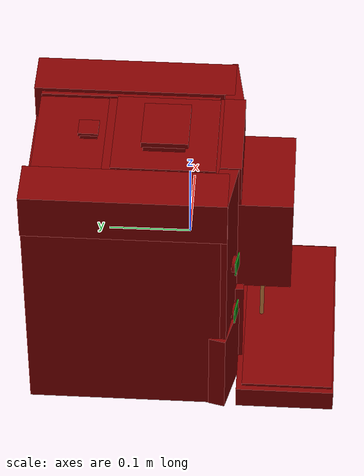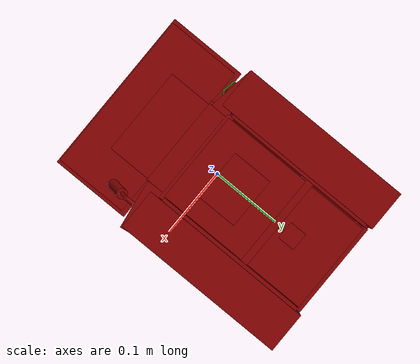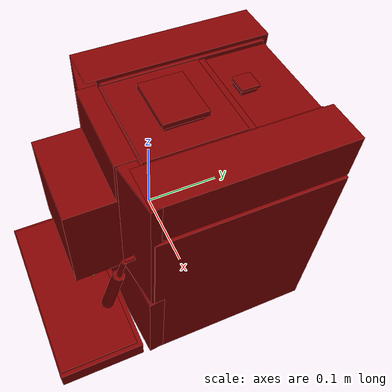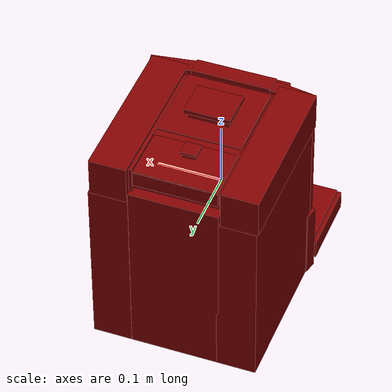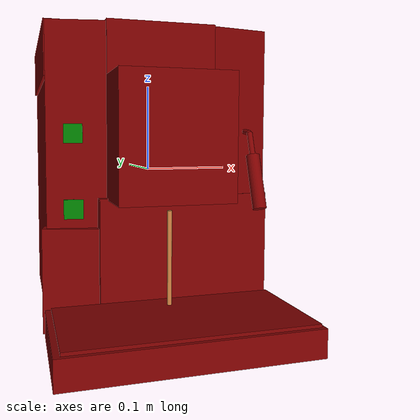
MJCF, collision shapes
<?xml version='1.0' encoding='UTF-8'?>
<mujoco model="model">
  <compiler angle="radian"/>
  <asset>
    <mesh file="visuals/Body001.obj" name="Body001_vis"/>
    <mesh file="visuals/Button001.obj" name="Button001_vis"/>
    <mesh file="visuals/Button002.obj" name="Button002_vis"/>
    <mesh file="visuals/Lever001.obj" name="Lever001_vis"/>
    <mesh file="visuals/Lid001.obj" name="Lid001_vis"/>
    <mesh file="visuals/Lid002.obj" name="Lid002_vis"/>
    <mesh file="visuals/Lid003.obj" name="Lid003_vis"/>
    <texture file="visuals/T_BC001.png" name="Body001_material" type="2d"/>
    <material name="Body001_material" rgba="1 1 1 1.0" texture="Body001_material" shininess="0.141421377658844" specular="1"/>
    <texture file="visuals/T_BC001.png" name="Button001_material" type="2d"/>
    <material name="Button001_material" rgba="1 1 1 1.0" texture="Button001_material" shininess="0.141421377658844" specular="0.3103448502657381"/>
    <texture file="visuals/T_BC001.png" name="Button002_material" type="2d"/>
    <material name="Button002_material" rgba="1 1 1 1.0" texture="Button002_material" shininess="0.141421377658844" specular="0.3103448502657381"/>
    <texture file="visuals/T_BC001.png" name="Lever001_material" type="2d"/>
    <material name="Lever001_material" rgba="1 1 1 1.0" texture="Lever001_material" shininess="0.141421377658844" specular="0.3103448502657381"/>
    <texture file="visuals/T_BC001.png" name="Lid001_material" type="2d"/>
    <material name="Lid001_material" rgba="1 1 1 1.0" texture="Lid001_material" shininess="0.141421377658844" specular="0.3103448502657381"/>
    <texture file="visuals/T_BC001.png" name="Lid002_material" type="2d"/>
    <material name="Lid002_material" rgba="1 1 1 1.0" texture="Lid002_material" shininess="0.141421377658844" specular="0.3103448502657381"/>
    <texture file="visuals/T_BC001.png" name="Lid003_material" type="2d"/>
    <material name="Lid003_material" rgba="1 1 1 1.0" texture="Lid003_material" shininess="0.141421377658844" specular="0.3103448502657381"/>
  </asset>
  <default>
    <default class="visual">
      <geom conaffinity="0" contype="0" group="1" type="mesh"/>
    </default>
    <default class="collision">
      <geom group="0" rgba="0.5 0 0 0.5"/>
    </default>
    <default class="spawn">
      <geom group="0" rgba="1 1 1 0.5" contype="0" conaffinity="0"/>
      <site group="0" rgba="1 1 1 0.5"/>
    </default>
    <default class="region">
      <geom group="1" conaffinity="0" contype="0" rgba="0 1 0 0"/>
    </default>
  </default>
  <worldbody>
    <body>
      <body name="object">
        <geom class="collision" type="box" pos="-0.09842395782470703 -0.06190423667430878 0.0423700325191021" size="0.010135134682059288 0.010135133750736713 0.0006588352844119072" quat="0.7044782042503357 0.7044782638549805 -0.060913216322660446 -0.06091320887207985" name="start_button_1" rgba="0.0 0.5 0 0.5"/>
        <geom class="collision" type="box" pos="-0.09816303849220276 -0.06159324198961258 -0.03887893259525299" size="0.010480131022632122 0.010480130091309547 0.0006812618230469525" quat="0.7049643993377686 0.7049643993377686 -0.05500186234712601 -0.05500185862183571" name="start_button_2" rgba="0.0 0.5 0 0.5"/>
        <site type="cylinder" rgba="0.8 0.5 0.25 1" size="0.0024999999441206455 0.0638296902179718" pos="-7.12467584929044e-11 -0.09153265506029129 -0.10336465388536453" name="coffee_liquid"/>
        <site rgba="0 0 0 0" size="0.009999999776482582 0.009999999776482582" pos="6.879723514430225e-05 -0.09183046221733093 -0.13578537106513977" name="receptacle_place_site"/>
        <geom mesh="Body001_vis" type="mesh" solimp="0.998 0.998 0.001" solref="0.001 1" density="100" friction="0.95 0.3 0.1" class="visual" material="Body001_material"/>
        <geom class="collision" type="box" pos="0.10004785656929016 0.07367844134569168 -0.037637755274772644" size="0.030311673879623413 0.12062250822782516 0.13961245119571686" quat="1.0 0.0 0.0 0.0"/>
        <geom class="collision" type="box" pos="0.029719525948166847 -0.05149433761835098 -0.10152843594551086" size="0.10197263956069946 0.010420785285532475 0.07380729913711548" quat="0.9993000030517578 0.0 0.0 0.03740962594747543"/>
        <geom class="collision" type="box" pos="-0.00018324051052331924 -0.08585076034069061 0.03792019188404083" size="0.06194265931844711 0.04085879027843475 0.06753180921077728" quat="1.0 0.0 0.0 0.0"/>
        <geom class="collision" type="box" pos="-0.09860614687204361 -0.04727686196565628 -0.11878375709056854" size="0.03147326409816742 0.01042078621685505 0.05791816487908363" quat="0.9928207397460938 0.0 -0.0 -0.119611956179142"/>
        <geom class="collision" type="box" pos="0.00017334520816802979 -0.12464971840381622 -0.16049832105636597" size="0.13028547167778015 0.06053595244884491 0.014837422408163548" quat="1.0 0.0 0.0 0.0"/>
        <geom class="collision" type="box" pos="-0.0991714596748352 0.07233699411153793 0.13361461460590363" size="0.02848171256482601 0.1225765272974968 0.02977890707552433" quat="1.0 0.0 0.0 0.0"/>
        <geom class="collision" type="box" pos="0.09897089749574661 0.07233699411153793 0.13361461460590363" size="0.02848171256482601 0.1225765272974968 0.02977890707552433" quat="1.0 0.0 0.0 0.0"/>
        <geom class="collision" type="box" pos="-0.0001832498237490654 -0.05097554251551628 0.13410216569900513" size="0.061942316591739655 0.012888642027974129 0.03011796809732914" quat="1.0 0.0 0.0 0.0"/>
        <geom class="collision" type="box" pos="0.09431563317775726 -0.04545046389102936 0.06758055090904236" size="0.0338888093829155 0.011301165446639061 0.09558593481779099" quat="0.9971423745155334 0.0 0.0 0.0755455270409584"/>
        <geom class="collision" type="box" pos="-0.09114154428243637 -0.044589780271053314 0.05121865123510361" size="0.0338888093829155 0.011301165446639061 0.11147239804267883" quat="0.9969373345375061 0.0 0.0 -0.07820488512516022"/>
        <geom class="collision" type="box" pos="-0.09486681967973709 0.07367844134569168 -0.037637755274772644" size="0.030311673879623413 0.12062250822782516 0.13961245119571686" quat="1.0 0.0 0.0 0.0"/>
        <geom class="collision" type="box" pos="0.0010730847716331482 0.18582426011562347 -0.029841408133506775" size="0.06856749206781387 0.008476689457893372 0.14740879833698273" quat="1.0 0.0 0.0 0.0"/>
        <geom class="collision" type="box" pos="0.0010730847716331482 0.09386860579252243 -0.01068810373544693" size="0.06856749206781387 0.008476689457893372 0.16656211018562317" quat="1.0 0.0 0.0 0.0"/>
        <geom class="collision" type="box" pos="0.06990054994821548 0.0769667997956276 -0.010164596140384674" size="0.004509396851062775 0.10890988260507584 0.1688523292541504" quat="1.0 0.0 0.0 0.0"/>
        <geom class="collision" type="box" pos="-0.07180759310722351 0.076966792345047 -0.010164596140384674" size="0.005399683024734259 0.1089094877243042 0.16885173320770264" quat="1.0 0.0 0.0 0.0"/>
        <geom class="collision" type="box" pos="0.0010730847716331482 -0.03757036477327347 0.008877258747816086" size="0.06856749206781387 0.008476689457893372 0.14740879833698273" quat="1.0 0.0 0.0 0.0"/>
        <geom class="collision" type="box" pos="0.0003896653652191162 0.076966792345047 -0.1658874750137329" size="0.07759694010019302 0.10890953987836838 0.013128950260579586" quat="1.0 0.0 0.0 0.0"/>
        <body name="Button001">
          <joint axis="0.18028995394706726 0.9836135506629944 0.0" pos="-0.0978635922074318 -0.05712379887700081 0.04235759377479553" limited="true" name="Button001_joint" range="0.0 0.004" type="slide" damping="1" frictionloss="1" armature=".01" stiffness="0.05"/>
          <geom mesh="Button001_vis" type="mesh" solimp="0.998 0.998 0.001" solref="0.001 1" density="100" friction="0.95 0.3 0.1" class="visual" material="Button001_material"/>
          <geom class="collision" type="cylinder" pos="-0.09800706803798676 -0.05841934308409691 0.0423700325191021" size="0.010135134682059288 0.002048329683020711" quat="0.7044782042503357 0.7044782638549805 -0.060913216322660446 -0.06091320887207985"/>
        </body>
        <body name="Button002">
          <joint axis="0.19144053757190704 0.9815042018890381 0.0" pos="-0.09768889844417572 -0.0572008416056633 -0.039057888090610504" limited="true" name="Button002_joint" range="0.0 0.004" type="slide" damping="1" frictionloss="1" armature=".01" stiffness="0.05"/>
          <geom mesh="Button002_vis" type="mesh" solimp="0.998 0.998 0.001" solref="0.001 1" density="100" friction="0.95 0.3 0.1" class="visual" material="Button002_material"/>
          <geom class="collision" type="cylinder" pos="-0.0980013832449913 -0.059192974120378494 -0.03887893259525299" size="0.010480131022632122 0.001367688411846757" quat="0.7049643993377686 0.7049643993377686 -0.05500186234712601 -0.05500185862183571"/>
        </body>
        <body name="Lever001">
          <joint axis="0.0 1.0 0.0" pos="0.10050269216299057 -0.0603061243891716 0.04511411488056183" limited="true" name="Lever001_joint" range="-0.4363323129985824 0.4363323129985824" type="hinge" damping="1" frictionloss="1" armature=".01" stiffness="1"/>
          <geom mesh="Lever001_vis" type="mesh" solimp="0.998 0.998 0.001" solref="0.001 1" density="100" friction="0.95 0.3 0.1" class="visual" material="Lever001_material"/>
          <geom class="collision" type="cylinder" pos="0.10092324018478394 -0.09040150046348572 -0.010983822867274284" size="0.007614943664520979 0.030655762180685997" quat="0.9879016876220703 -0.15508131682872772 0.0 0.0"/>
          <geom class="collision" type="cylinder" pos="0.10092324018478394 -0.07676224410533905 0.031226765364408493" size="0.0032508024014532566 0.013086875900626183" quat="0.9879016876220703 -0.15508130192756653 0.0 0.0"/>
          <geom class="collision" type="cylinder" pos="0.10092324018478394 -0.06590012460947037 0.04448964446783066" size="0.0029652342200279236 0.005895915906876326" quat="0.7490148544311523 -0.6625531911849976 -1.3637837932236094e-16 -3.670623563499166e-17"/>
        </body>
        <body name="Lid001">
          <joint axis="0.0 0.0 1.0" pos="-4.3958425521850586e-07 -0.12225028872489929 -0.14410428702831268" limited="true" name="Lid001_joint" range="0.0 0.08" type="slide" damping="1" frictionloss="1" armature=".01" stiffness="0.05"/>
          <geom mesh="Lid001_vis" type="mesh" solimp="0.998 0.998 0.001" solref="0.001 1" density="100" friction="0.95 0.3 0.1" class="visual" material="Lid001_material"/>
          <geom class="collision" type="box" pos="0.0006822813302278519 -0.1271844357252121 -0.14300593733787537" size="0.12462396919727325 0.05605493485927582 0.0017254222184419632" quat="1.0 0.0 0.0 0.0"/>
        </body>
        <body name="Lid002">
          <joint axis="0.0 0.0 1.0" pos="0.0002455152862239629 0.03214159607887268 0.16335901618003845" limited="true" name="Lid002_joint" range="0.0 0.1" type="slide" damping="1" frictionloss="1" armature=".01" stiffness="0.05"/>
          <geom mesh="Lid002_vis" type="mesh" solimp="0.998 0.998 0.001" solref="0.001 1" density="100" friction="0.95 0.3 0.1" class="visual" material="Lid002_material"/>
          <geom class="collision" type="box" pos="0.0003470233059488237 0.02931920439004898 0.15840433537960052" size="0.06411880999803543 0.06277783960103989 0.0013106801779940724" quat="1.0 0.0 0.0 0.0"/>
          <geom class="collision" type="box" pos="0.0012522090692073107 0.029038209468126297 0.1711559295654297" size="0.03572671115398407 0.02824568934738636 0.0034461310133337975" quat="1.0 0.0 0.0 0.0"/>
          <geom class="collision" type="box" pos="-0.00010544597171247005 0.02993449941277504 0.1633100062608719" size="0.031933680176734924 0.025141848251223564 0.004951854702085257" quat="1.0 0.0 0.0 0.0"/>
        </body>
        <body name="Lid003">
          <joint axis="-1.0 0.0 0.0" pos="0.0002455588837619871 0.18599331378936768 0.12093546241521835" limited="true" name="Lid003_joint" range="0.0 1.2217304763960306" type="hinge" damping="1" frictionloss="1" armature=".01" stiffness="0.05"/>
          <geom mesh="Lid003_vis" type="mesh" solimp="0.998 0.998 0.001" solref="0.001 1" density="100" friction="0.95 0.3 0.1" class="visual" material="Lid003_material"/>
          <geom class="collision" type="box" pos="0.0003470233059488237 0.14213073253631592 0.15469862520694733" size="0.06389008462429047 0.04407521337270737 0.0011658011935651302" quat="1.0 0.0 0.0 0.0"/>
          <geom class="collision" type="box" pos="0.0003470233059488237 0.18425369262695312 0.14281019568443298" size="0.06396046280860901 0.0019522457150742412 0.012581522576510906" quat="1.0 0.0 0.0 0.0"/>
          <geom class="collision" type="box" pos="0.0003470233059488237 0.12231365591287613 0.1638661026954651" size="0.012507748790085316 0.012174618430435658 0.0017190162325277925" quat="1.0 0.0 0.0 0.0"/>
          <geom class="collision" type="box" pos="0.00034630202571861446 0.12197498232126236 0.1592247039079666" size="0.010523241944611073 0.010541301220655441 0.0032968055456876755" quat="1.0 0.0 0.0 0.0"/>
        </body>
        <geom class="region" name="reg_main" type="box" pos="0.0 0.0 0.0" size="0.13082626461982727 0.18654967844486237 0.17487169802188873"/>
      </body>
    </body>
  </worldbody>
  <actuator>
    <motor name="Button001_joint_actuator" joint="Button001_joint" gear="0.5"/>
    <motor name="Button002_joint_actuator" joint="Button002_joint" gear="0.5"/>
    <motor name="Lever001_joint_actuator" joint="Lever001_joint" gear="0.5"/>
    <motor name="Lid001_joint_actuator" joint="Lid001_joint" gear="0.5"/>
    <motor name="Lid002_joint_actuator" joint="Lid002_joint" gear="0.5"/>
    <motor name="Lid003_joint_actuator" joint="Lid003_joint" gear="0.5"/>
  </actuator>
</mujoco>
